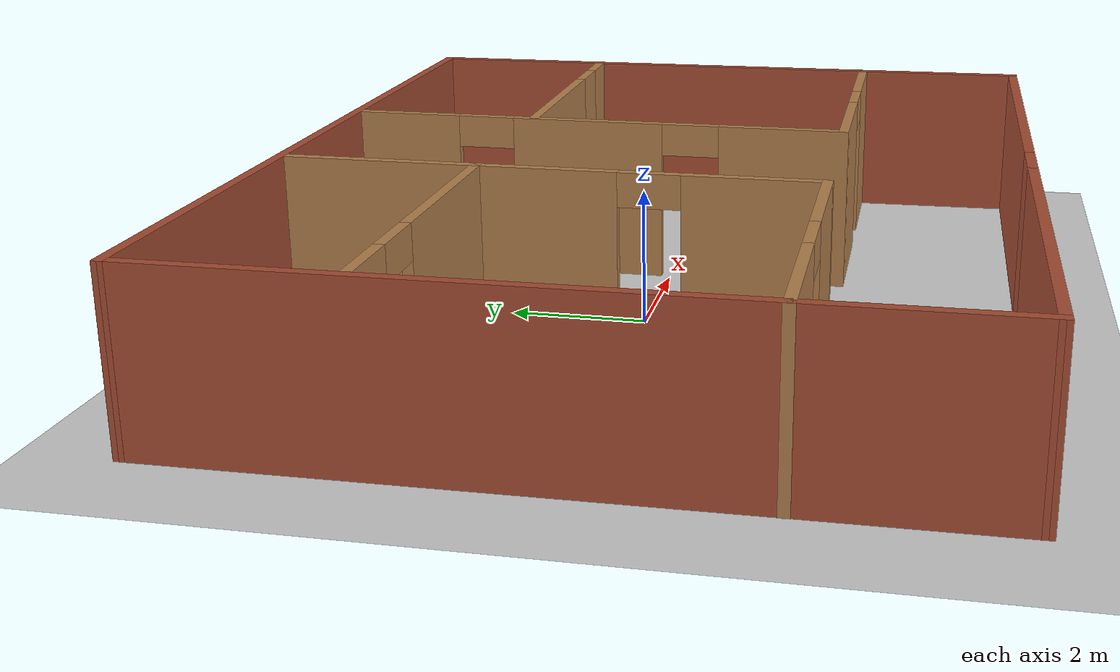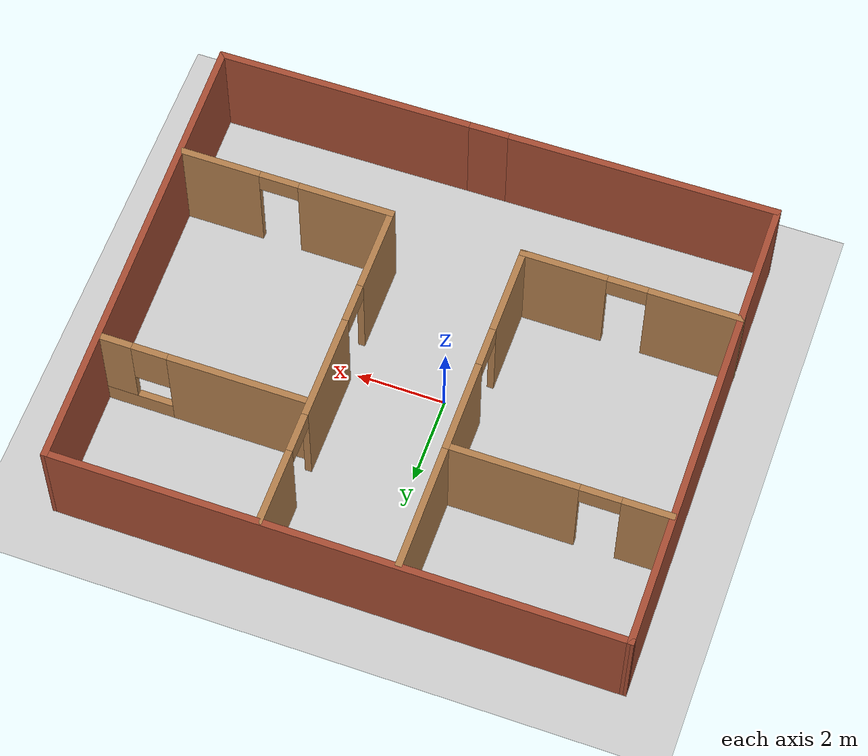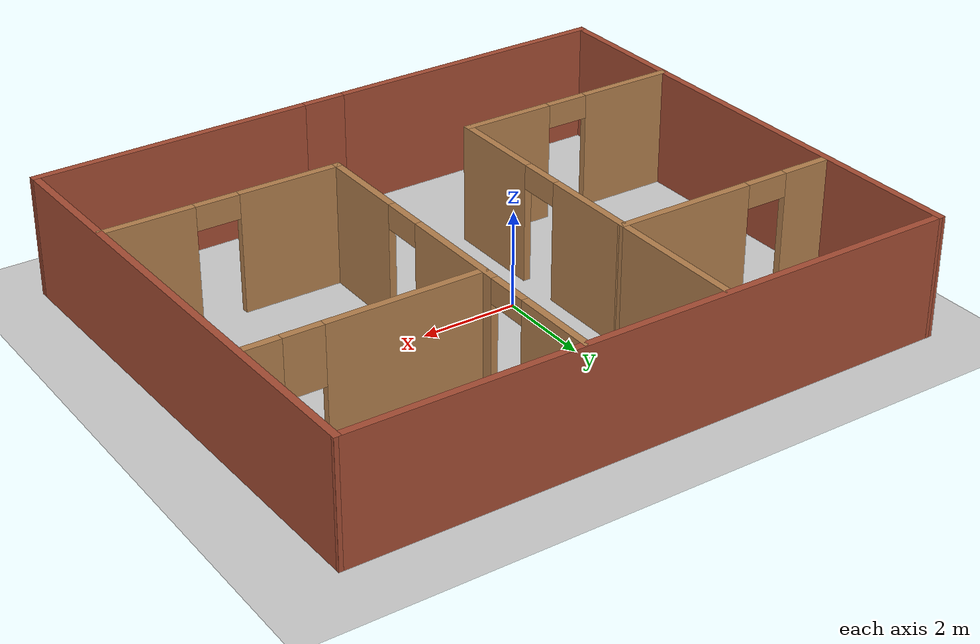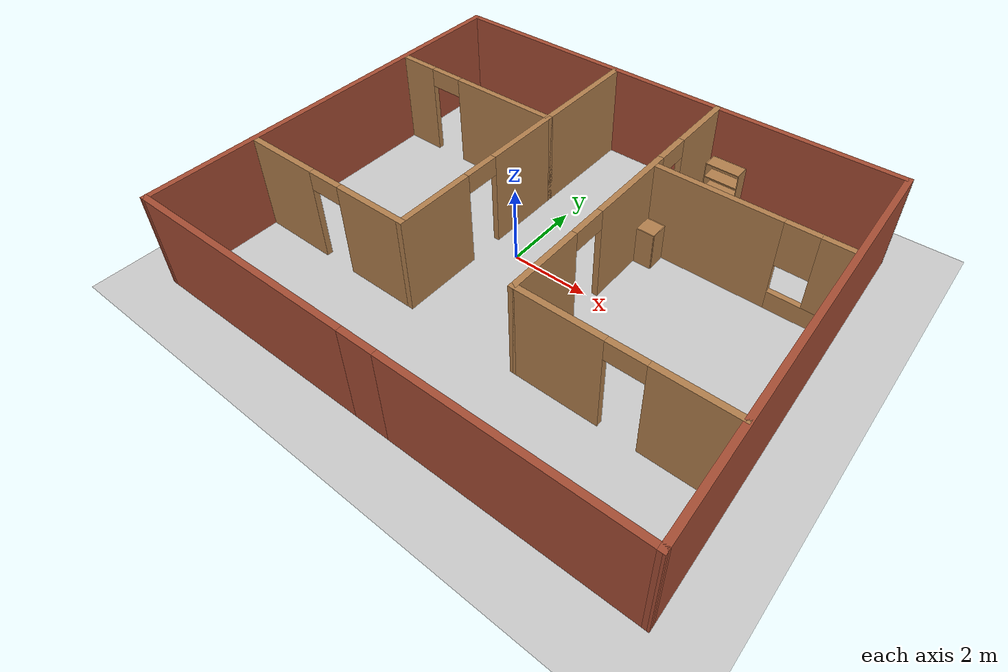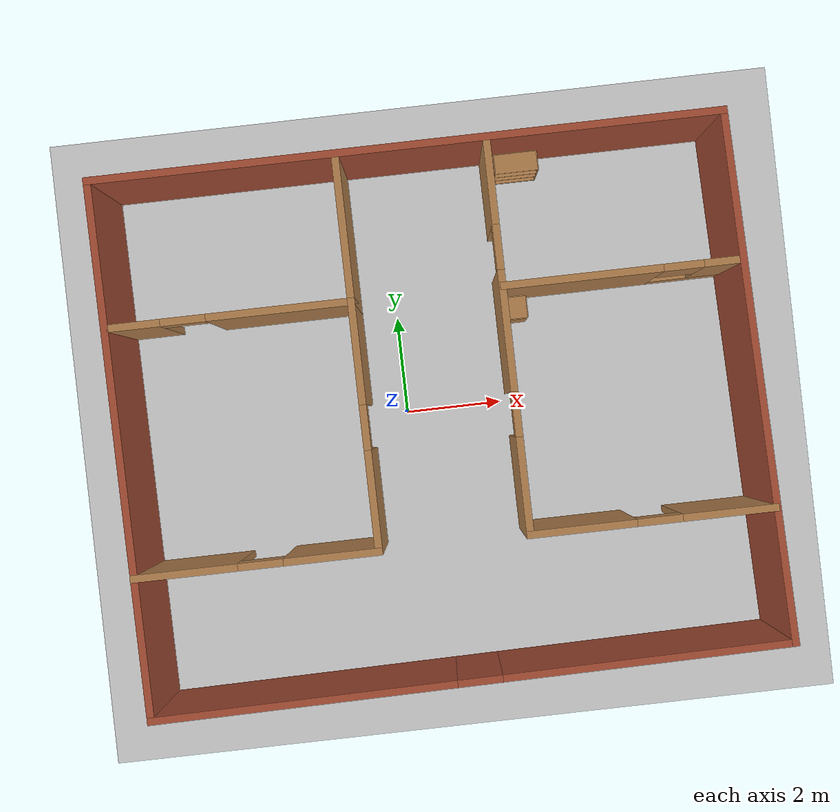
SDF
<sdf version="1.7">
 <world name="default">
  <plugin name="gazebo_ros_state" filename="libgazebo_ros_state.so">
   <ros><namespace>/gazebo</namespace></ros>
   <update_rate>10.0</update_rate>
  </plugin>
  <light name="sun" type="directional">
   <pose>0 0 10 0 -0 0</pose>
   <diffuse>0.8 0.8 0.8 1</diffuse>
   <specular>0.2 0.2 0.2 1</specular>
   <attenuation>
    <range>1000</range>
    <constant>0.9</constant>
    <linear>0.01</linear>
    <quadratic>0.001</quadratic>
   </attenuation>
   <direction>-0.5 0.1 -0.9</direction>
   <spot><inner_angle>0</inner_angle><outer_angle>0</outer_angle><falloff>0</falloff></spot>
  </light>
  <model name="ground_plane">
   <static>1</static>
   <link name="link">
    <collision name="collision">
     <geometry><plane><normal>0 0 1</normal><size>100 100</size></plane></geometry>
     <surface>
      <contact><collide_bitmask>65535</collide_bitmask></contact>
      <friction><ode><mu>100</mu><mu2>50</mu2></ode></friction>
     </surface>
    </collision>
    <visual name="visual">
     <cast_shadows>0</cast_shadows>
     <geometry><plane><normal>0 0 1</normal><size>100 100</size></plane></geometry>
     <material>
      <script><uri>file://media/materials/scripts/gazebo.material</uri><name>Gazebo/Grey</name></script>
     </material>
    </visual>
   </link>
  </model>
  <gravity>0 0 -9.8</gravity>
  <magnetic_field>6e-06 2.3e-05 -4.2e-05</magnetic_field>
  <atmosphere type="adiabatic"/>
  <physics type="ode">
   <max_step_size>0.001</max_step_size>
   <real_time_factor>1</real_time_factor>
   <real_time_update_rate>1000</real_time_update_rate>
  </physics>
  <scene><ambient>0.4 0.4 0.4 1</ambient><background>0.7 0.7 0.7 1</background><shadows>1</shadows></scene>
  <audio><device>default</device></audio>
  <spherical_coordinates>
   <surface_model>EARTH_WGS84</surface_model>
   <latitude_deg>0</latitude_deg>
   <longitude_deg>0</longitude_deg>
   <elevation>0</elevation>
   <heading_deg>0</heading_deg>
  </spherical_coordinates>
  <model name="my_floor">
   <pose>0.713141 -0.16416 0 0 -0 0</pose>
   <link name="Wall_0">
    <collision name="Wall_0_Collision">
     <geometry><box><size>12.75 0.15 2.5</size></box></geometry>
     <pose>0 0 1.25 0 -0 0</pose>
    </collision>
    <visual name="Wall_0_Visual">
     <pose>0 0 1.25 0 -0 0</pose>
     <geometry><box><size>12.75 0.15 2.5</size></box></geometry>
     <material>
      <script><uri>file://media/materials/scripts/gazebo.material</uri><name>Gazebo/Bricks</name></script>
      <ambient>1 1 1 1</ambient>
     </material>
     <meta><layer>0</layer></meta>
    </visual>
    <pose>-0.124542 5.34599 0 0 -0 0</pose>
   </link>
   <link name="Wall_10">
    <pose>3.90072 -2.53061 0 0 -0 0</pose>
    <visual name="Wall_10_Visual_0">
     <pose>-1.40239 0 1.25 0 -0 0</pose>
     <geometry><box><size>2.19523 0.15 2.5</size></box></geometry>
     <material>
      <script><uri>file://media/materials/scripts/gazebo.material</uri><name>Gazebo/Wood</name></script>
      <ambient>1 1 1 1</ambient>
     </material>
     <meta><layer>0</layer></meta>
    </visual>
    <collision name="Wall_10_Collision_0">
     <geometry><box><size>2.19523 0.15 2.5</size></box></geometry>
     <pose>-1.40239 0 1.25 0 -0 0</pose>
    </collision>
    <visual name="Wall_10_Visual_1">
     <pose>1.54761 0 1.25 0 -0 0</pose>
     <geometry><box><size>1.90478 0.15 2.5</size></box></geometry>
     <material>
      <script><uri>file://media/materials/scripts/gazebo.material</uri><name>Gazebo/Wood</name></script>
      <ambient>1 1 1 1</ambient>
     </material>
     <meta><layer>0</layer></meta>
    </visual>
    <collision name="Wall_10_Collision_1">
     <geometry><box><size>1.90478 0.15 2.5</size></box></geometry>
     <pose>1.54761 0 1.25 0 -0 0</pose>
    </collision>
    <visual name="Wall_10_Visual_2">
     <pose>0.145225 0 2.25 0 -0 0</pose>
     <geometry><box><size>0.9 0.15 0.5</size></box></geometry>
     <material>
      <script><uri>file://media/materials/scripts/gazebo.material</uri><name>Gazebo/Wood</name></script>
      <ambient>1 1 1 1</ambient>
     </material>
     <meta><layer>0</layer></meta>
    </visual>
    <collision name="Wall_10_Collision_2">
     <geometry><box><size>0.9 0.15 0.5</size></box></geometry>
     <pose>0.145225 0 2.25 0 -0 0</pose>
    </collision>
   </link>
   <link name="Wall_12">
    <pose>3.80232 2.39337 0 0 -0 0</pose>
    <visual name="Wall_12_Visual_0">
     <pose>-0.756814 0 1.25 0 -0 0</pose>
     <geometry><box><size>3.23637 0.15 2.5</size></box></geometry>
     <material>
      <script><uri>file://media/materials/scripts/gazebo.material</uri><name>Gazebo/Wood</name></script>
      <ambient>1 1 1 1</ambient>
     </material>
     <meta><layer>0</layer></meta>
    </visual>
    <collision name="Wall_12_Collision_0">
     <geometry><box><size>3.23637 0.15 2.5</size></box></geometry>
     <pose>-0.756814 0 1.25 0 -0 0</pose>
    </collision>
    <visual name="Wall_12_Visual_1">
     <pose>1.61819 0 0.25 0 -0 0</pose>
     <geometry><box><size>1.51363 0.15 0.5</size></box></geometry>
     <material>
      <script><uri>file://media/materials/scripts/gazebo.material</uri><name>Gazebo/Wood</name></script>
      <ambient>1 1 1 1</ambient>
     </material>
     <meta><layer>0</layer></meta>
    </visual>
    <collision name="Wall_12_Collision_1">
     <geometry><box><size>1.51363 0.15 0.5</size></box></geometry>
     <pose>1.61819 0 0.25 0 -0 0</pose>
    </collision>
    <visual name="Wall_12_Visual_2">
     <pose>2.01819 0 1.5 0 -0 0</pose>
     <geometry><box><size>0.713628 0.15 2</size></box></geometry>
     <material>
      <script><uri>file://media/materials/scripts/gazebo.material</uri><name>Gazebo/Wood</name></script>
      <ambient>1 1 1 1</ambient>
     </material>
     <meta><layer>0</layer></meta>
    </visual>
    <collision name="Wall_12_Collision_2">
     <geometry><box><size>0.713628 0.15 2</size></box></geometry>
     <pose>2.01819 0 1.5 0 -0 0</pose>
    </collision>
    <visual name="Wall_12_Visual_3">
     <pose>1.26137 0 1.9 0 -0 0</pose>
     <geometry><box><size>0.8 0.15 1.2</size></box></geometry>
     <material>
      <script><uri>file://media/materials/scripts/gazebo.material</uri><name>Gazebo/Wood</name></script>
      <ambient>1 1 1 1</ambient>
     </material>
     <meta><layer>0</layer></meta>
    </visual>
    <collision name="Wall_12_Collision_3">
     <geometry><box><size>0.8 0.15 1.2</size></box></geometry>
     <pose>1.26137 0 1.9 0 -0 0</pose>
    </collision>
   </link>
   <link name="Wall_14">
    <pose>-3.94634 -2.52766 0 0 -0 0</pose>
    <visual name="Wall_14_Visual_0">
     <pose>-1.43419 0 1.25 0 -0 0</pose>
     <geometry><box><size>2.13162 0.15 2.5</size></box></geometry>
     <material>
      <script><uri>file://media/materials/scripts/gazebo.material</uri><name>Gazebo/Wood</name></script>
      <ambient>1 1 1 1</ambient>
     </material>
     <meta><layer>0</layer></meta>
    </visual>
    <collision name="Wall_14_Collision_0">
     <geometry><box><size>2.13162 0.15 2.5</size></box></geometry>
     <pose>-1.43419 0 1.25 0 -0 0</pose>
    </collision>
    <visual name="Wall_14_Visual_1">
     <pose>1.51581 0 1.25 0 -0 0</pose>
     <geometry><box><size>1.96839 0.15 2.5</size></box></geometry>
     <material>
      <script><uri>file://media/materials/scripts/gazebo.material</uri><name>Gazebo/Wood</name></script>
      <ambient>1 1 1 1</ambient>
     </material>
     <meta><layer>0</layer></meta>
    </visual>
    <collision name="Wall_14_Collision_1">
     <geometry><box><size>1.96839 0.15 2.5</size></box></geometry>
     <pose>1.51581 0 1.25 0 -0 0</pose>
    </collision>
    <visual name="Wall_14_Visual_2">
     <pose>0.081615 0 2.25 0 -0 0</pose>
     <geometry><box><size>0.9 0.15 0.5</size></box></geometry>
     <material>
      <script><uri>file://media/materials/scripts/gazebo.material</uri><name>Gazebo/Wood</name></script>
      <ambient>1 1 1 1</ambient>
     </material>
     <meta><layer>0</layer></meta>
    </visual>
    <collision name="Wall_14_Collision_2">
     <geometry><box><size>0.9 0.15 0.5</size></box></geometry>
     <pose>0.081615 0 2.25 0 -0 0</pose>
    </collision>
   </link>
   <link name="Wall_15">
    <pose>-1.52134 -0.053846 0 0 -0 1.5708</pose>
    <visual name="Wall_15_Visual_0">
     <pose>-1.50907 0 1.25 0 -0 0</pose>
     <geometry><box><size>2.07949 0.15 2.5</size></box></geometry>
     <material>
      <script><uri>file://media/materials/scripts/gazebo.material</uri><name>Gazebo/Wood</name></script>
      <ambient>1 1 1 1</ambient>
     </material>
     <meta><layer>0</layer></meta>
    </visual>
    <collision name="Wall_15_Collision_0">
     <geometry><box><size>2.07949 0.15 2.5</size></box></geometry>
     <pose>-1.50907 0 1.25 0 -0 0</pose>
    </collision>
    <visual name="Wall_15_Visual_1">
     <pose>1.48975 0 1.25 0 -0 0</pose>
     <geometry><box><size>2.11815 0.15 2.5</size></box></geometry>
     <material>
      <script><uri>file://media/materials/scripts/gazebo.material</uri><name>Gazebo/Wood</name></script>
      <ambient>1 1 1 1</ambient>
     </material>
     <meta><layer>0</layer></meta>
    </visual>
    <collision name="Wall_15_Collision_1">
     <geometry><box><size>2.11815 0.15 2.5</size></box></geometry>
     <pose>1.48975 0 1.25 0 -0 0</pose>
    </collision>
    <visual name="Wall_15_Visual_2">
     <pose>-0.019328 0 2.25 0 -0 0</pose>
     <geometry><box><size>0.9 0.15 0.5</size></box></geometry>
     <material>
      <script><uri>file://media/materials/scripts/gazebo.material</uri><name>Gazebo/Wood</name></script>
      <ambient>1 1 1 1</ambient>
     </material>
     <meta><layer>0</layer></meta>
    </visual>
    <collision name="Wall_15_Collision_2">
     <geometry><box><size>0.9 0.15 0.5</size></box></geometry>
     <pose>-0.019328 0 2.25 0 -0 0</pose>
    </collision>
   </link>
   <link name="Wall_2">
    <collision name="Wall_2_Collision">
     <geometry><box><size>10.7138 0.15 2.5</size></box></geometry>
     <pose>0 0 1.25 0 -0 0</pose>
    </collision>
    <visual name="Wall_2_Visual">
     <pose>0 0 1.25 0 -0 0</pose>
     <geometry><box><size>10.7138 0.15 2.5</size></box></geometry>
     <material>
      <script><uri>file://media/materials/scripts/gazebo.material</uri><name>Gazebo/Bricks</name></script>
      <ambient>1 1 1 1</ambient>
     </material>
     <meta><layer>0</layer></meta>
    </visual>
    <pose>6.29941 0.065855 0 0 -0 -1.54733</pose>
   </link>
   <link name="Wall_3">
    <pose>0.039306 -5.28078 0 0 -0 -3.13118</pose>
    <visual name="Wall_3_Visual_0">
     <pose>-3.52578 0 1.25 0 -0 0</pose>
     <geometry><box><size>5.86723 0.15 2.5</size></box></geometry>
     <material>
      <script><uri>file://media/materials/scripts/gazebo.material</uri><name>Gazebo/Bricks</name></script>
      <ambient>1 1 1 1</ambient>
     </material>
     <meta><layer>0</layer></meta>
    </visual>
    <collision name="Wall_3_Collision_0">
     <geometry><box><size>5.86723 0.15 2.5</size></box></geometry>
     <pose>-3.52578 0 1.25 0 -0 0</pose>
    </collision>
    <visual name="Wall_3_Visual_1">
     <pose>3.38361 0 1.25 0 -0 0</pose>
     <geometry><box><size>6.15156 0.15 2.5</size></box></geometry>
     <material>
      <script><uri>file://media/materials/scripts/gazebo.material</uri><name>Gazebo/Bricks</name></script>
      <ambient>1 1 1 1</ambient>
     </material>
     <meta><layer>0</layer></meta>
    </visual>
    <collision name="Wall_3_Collision_1">
     <geometry><box><size>6.15156 0.15 2.5</size></box></geometry>
     <pose>3.38361 0 1.25 0 -0 0</pose>
    </collision>
    <visual name="Wall_3_Visual_2">
     <pose>-0.142163 0 1.25 0 -0 0</pose>
     <geometry><box><size>0.9 0.15 2.5</size></box></geometry>
     <material>
      <script><uri>file://media/materials/scripts/gazebo.material</uri><name>Gazebo/Bricks</name></script>
      <ambient>1 1 1 1</ambient>
     </material>
     <meta><layer>0</layer></meta>
    </visual>
    <collision name="Wall_3_Collision_2">
     <geometry><box><size>0.9 0.15 2.5</size></box></geometry>
     <pose>-0.142163 0 1.25 0 -0 0</pose>
    </collision>
   </link>
   <link name="Wall_4">
    <collision name="Wall_4_Collision">
     <geometry><box><size>10.8436 0.15 2.5</size></box></geometry>
     <pose>0 0 1.25 0 -0 0</pose>
    </collision>
    <visual name="Wall_4_Visual">
     <pose>0 0 1.25 0 -0 0</pose>
     <geometry><box><size>10.8436 0.15 2.5</size></box></geometry>
     <material>
      <script><uri>file://media/materials/scripts/gazebo.material</uri><name>Gazebo/Bricks</name></script>
      <ambient>1 1 1 1</ambient>
     </material>
     <meta><layer>0</layer></meta>
    </visual>
    <pose>-6.38464 -0.000645 0 0 -0 1.57826</pose>
   </link>
   <link name="Wall_6">
    <pose>-3.94634 2.41997 0 0 -0 0</pose>
    <visual name="Wall_6_Visual_0">
     <pose>-1.92939 0 1.25 0 -0 0</pose>
     <geometry><box><size>1.14121 0.15 2.5</size></box></geometry>
     <material>
      <script><uri>file://media/materials/scripts/gazebo.material</uri><name>Gazebo/Wood</name></script>
      <ambient>1 1 1 1</ambient>
     </material>
     <meta><layer>0</layer></meta>
    </visual>
    <collision name="Wall_6_Collision_0">
     <geometry><box><size>1.14121 0.15 2.5</size></box></geometry>
     <pose>-1.92939 0 1.25 0 -0 0</pose>
    </collision>
    <visual name="Wall_6_Visual_1">
     <pose>1.02061 0 1.25 0 -0 0</pose>
     <geometry><box><size>2.95879 0.15 2.5</size></box></geometry>
     <material>
      <script><uri>file://media/materials/scripts/gazebo.material</uri><name>Gazebo/Wood</name></script>
      <ambient>1 1 1 1</ambient>
     </material>
     <meta><layer>0</layer></meta>
    </visual>
    <collision name="Wall_6_Collision_1">
     <geometry><box><size>2.95879 0.15 2.5</size></box></geometry>
     <pose>1.02061 0 1.25 0 -0 0</pose>
    </collision>
    <visual name="Wall_6_Visual_2">
     <pose>-0.908789 0 2.25 0 -0 0</pose>
     <geometry><box><size>0.9 0.15 0.5</size></box></geometry>
     <material>
      <script><uri>file://media/materials/scripts/gazebo.material</uri><name>Gazebo/Wood</name></script>
      <ambient>1 1 1 1</ambient>
     </material>
     <meta><layer>0</layer></meta>
    </visual>
    <collision name="Wall_6_Collision_2">
     <geometry><box><size>0.9 0.15 0.5</size></box></geometry>
     <pose>-0.908789 0 2.25 0 -0 0</pose>
    </collision>
   </link>
   <link name="Wall_7">
    <collision name="Wall_7_Collision">
     <geometry><box><size>3 0.15 2.5</size></box></geometry>
     <pose>0 0 1.25 0 -0 0</pose>
    </collision>
    <visual name="Wall_7_Visual">
     <pose>0 0 1.25 0 -0 0</pose>
     <geometry><box><size>3 0.15 2.5</size></box></geometry>
     <material>
      <script><uri>file://media/materials/scripts/gazebo.material</uri><name>Gazebo/Wood</name></script>
      <ambient>1 1 1 1</ambient>
     </material>
     <meta><layer>0</layer></meta>
    </visual>
    <pose>-1.52134 3.84497 0 0 -0 1.5708</pose>
   </link>
   <link name="Wall_9">
    <pose>1.47572 1.39439 0 0 -0 -1.5708</pose>
    <visual name="Wall_9_Visual_0">
     <pose>-3.11036 0 1.25 0 -0 0</pose>
     <geometry><box><size>1.77928 0.15 2.5</size></box></geometry>
     <material>
      <script><uri>file://media/materials/scripts/gazebo.material</uri><name>Gazebo/Wood</name></script>
      <ambient>1 1 1 1</ambient>
     </material>
     <meta><layer>0</layer></meta>
    </visual>
    <collision name="Wall_9_Collision_0">
     <geometry><box><size>1.77928 0.15 2.5</size></box></geometry>
     <pose>-3.11036 0 1.25 0 -0 0</pose>
    </collision>
    <visual name="Wall_9_Visual_1">
     <pose>-0.116879 0 1.25 0 -0 0</pose>
     <geometry><box><size>2.40768 0.15 2.5</size></box></geometry>
     <material>
      <script><uri>file://media/materials/scripts/gazebo.material</uri><name>Gazebo/Wood</name></script>
      <ambient>1 1 1 1</ambient>
     </material>
     <meta><layer>0</layer></meta>
    </visual>
    <collision name="Wall_9_Collision_1">
     <geometry><box><size>2.40768 0.15 2.5</size></box></geometry>
     <pose>-0.116879 0 1.25 0 -0 0</pose>
    </collision>
    <visual name="Wall_9_Visual_2">
     <pose>2.99348 0 1.25 0 -0 0</pose>
     <geometry><box><size>2.01304 0.15 2.5</size></box></geometry>
     <material>
      <script><uri>file://media/materials/scripts/gazebo.material</uri><name>Gazebo/Wood</name></script>
      <ambient>1 1 1 1</ambient>
     </material>
     <meta><layer>0</layer></meta>
    </visual>
    <collision name="Wall_9_Collision_2">
     <geometry><box><size>2.01304 0.15 2.5</size></box></geometry>
     <pose>2.99348 0 1.25 0 -0 0</pose>
    </collision>
    <visual name="Wall_9_Visual_3">
     <pose>-1.77072 0 2.25 0 -0 0</pose>
     <geometry><box><size>0.9 0.15 0.5</size></box></geometry>
     <material>
      <script><uri>file://media/materials/scripts/gazebo.material</uri><name>Gazebo/Wood</name></script>
      <ambient>1 1 1 1</ambient>
     </material>
     <meta><layer>0</layer></meta>
    </visual>
    <collision name="Wall_9_Collision_3">
     <geometry><box><size>0.9 0.15 0.5</size></box></geometry>
     <pose>-1.77072 0 2.25 0 -0 0</pose>
    </collision>
    <visual name="Wall_9_Visual_4">
     <pose>1.53696 0 2.25 0 -0 0</pose>
     <geometry><box><size>0.9 0.15 0.5</size></box></geometry>
     <material>
      <script><uri>file://media/materials/scripts/gazebo.material</uri><name>Gazebo/Wood</name></script>
      <ambient>1 1 1 1</ambient>
     </material>
     <meta><layer>0</layer></meta>
    </visual>
    <collision name="Wall_9_Collision_4">
     <geometry><box><size>0.9 0.15 0.5</size></box></geometry>
     <pose>1.53696 0 2.25 0 -0 0</pose>
    </collision>
   </link>
   <static>1</static>
  </model>
  <model name="bookshelf">
   <static>1</static>
   <link name="link">
    <inertial><mass>1</mass></inertial>
    <collision name="back">
     <pose>0 0.005 0.6 0 -0 0</pose>
     <geometry><box><size>0.9 0.01 1.2</size></box></geometry>
    </collision>
    <visual name="visual1">
     <pose>0 0.005 0.6 0 -0 0</pose>
     <geometry><box><size>0.9 0.01 1.2</size></box></geometry>
     <material>
      <script><uri>file://media/materials/scripts/gazebo.material</uri><name>Gazebo/Wood</name></script>
     </material>
    </visual>
    <collision name="left_side">
     <pose>0.45 -0.195 0.6 0 -0 0</pose>
     <geometry><box><size>0.02 0.4 1.2</size></box></geometry>
    </collision>
    <visual name="visual2">
     <pose>0.45 -0.195 0.6 0 -0 0</pose>
     <geometry><box><size>0.02 0.4 1.2</size></box></geometry>
     <material>
      <script><uri>file://media/materials/scripts/gazebo.material</uri><name>Gazebo/Wood</name></script>
     </material>
    </visual>
    <collision name="right_side">
     <pose>-0.45 -0.195 0.6 0 -0 0</pose>
     <geometry><box><size>0.02 0.4 1.2</size></box></geometry>
    </collision>
    <visual name="visual3">
     <pose>-0.45 -0.195 0.6 0 -0 0</pose>
     <geometry><box><size>0.02 0.4 1.2</size></box></geometry>
     <material>
      <script><uri>file://media/materials/scripts/gazebo.material</uri><name>Gazebo/Wood</name></script>
     </material>
    </visual>
    <collision name="bottom">
     <pose>0 -0.195 0.03 0 -0 0</pose>
     <geometry><box><size>0.88 0.4 0.06</size></box></geometry>
    </collision>
    <visual name="visual4">
     <pose>0 -0.195 0.03 0 -0 0</pose>
     <geometry><box><size>0.88 0.4 0.06</size></box></geometry>
     <material>
      <script><uri>file://media/materials/scripts/gazebo.material</uri><name>Gazebo/Wood</name></script>
     </material>
    </visual>
    <collision name="top">
     <pose>0 -0.195 1.19 0 -0 0</pose>
     <geometry><box><size>0.88 0.4 0.02</size></box></geometry>
    </collision>
    <visual name="visual5">
     <pose>0 -0.195 1.19 0 -0 0</pose>
     <geometry><box><size>0.88 0.4 0.02</size></box></geometry>
     <material>
      <script><uri>file://media/materials/scripts/gazebo.material</uri><name>Gazebo/Wood</name></script>
     </material>
    </visual>
    <collision name="low_shelf">
     <pose>0 -0.195 0.43 0 -0 0</pose>
     <geometry><box><size>0.88 0.4 0.02</size></box></geometry>
    </collision>
    <visual name="visual6">
     <pose>0 -0.195 0.43 0 -0 0</pose>
     <geometry><box><size>0.88 0.4 0.02</size></box></geometry>
     <material>
      <script><uri>file://media/materials/scripts/gazebo.material</uri><name>Gazebo/Wood</name></script>
     </material>
    </visual>
    <collision name="high_shelf">
     <pose>0 -0.195 0.8 0 -0 0</pose>
     <geometry><box><size>0.88 0.4 0.02</size></box></geometry>
    </collision>
    <visual name="visual7">
     <pose>0 -0.195 0.8 0 -0 0</pose>
     <geometry><box><size>0.88 0.4 0.02</size></box></geometry>
     <material>
      <script><uri>file://media/materials/scripts/gazebo.material</uri><name>Gazebo/Wood</name></script>
     </material>
    </visual>
   </link>
   <pose>2.81488 5.05154 0 0 -0 0</pose>
  </model>
  <model name="cabinet">
   <static>1</static>
   <link name="cabinet_bottom_plate">
    <inertial>
     <pose>0 0 -1 0 -0 0</pose>
     <inertia><ixx>2.05</ixx><ixy>0</ixy><ixz>0</ixz><iyy>2.05</iyy><iyz>0</iyz><izz>2.05</izz></inertia>
     <mass>25</mass>
    </inertial>
    <collision name="cabinet_bottom_plate_geom">
     <pose>0 0 0.01 0 -0 0</pose>
     <geometry><box><size>0.45 0.45 0.02</size></box></geometry>
    </collision>
    <visual name="cabinet_bottom_plate_geom_visual">
     <pose>0 0 0.01 0 -0 0</pose>
     <geometry><box><size>0.45 0.45 0.02</size></box></geometry>
     <material>
      <script><uri>file://media/materials/scripts/gazebo.material</uri><name>Gazebo/Wood</name></script>
     </material>
    </visual>
    <collision name="cabinet_bottom_plate_geom_cabinet_back_plate">
     <pose>0.235 0 0.51 0 -0 0</pose>
     <geometry><box><size>0.02 0.45 1.02</size></box></geometry>
    </collision>
    <visual name="cabinet_bottom_plate_geom_cabinet_back_plate_visual">
     <pose>0.235 0 0.51 0 -0 0</pose>
     <geometry><box><size>0.02 0.45 1.02</size></box></geometry>
     <material>
      <script><uri>file://media/materials/scripts/gazebo.material</uri><name>Gazebo/Wood</name></script>
     </material>
    </visual>
    <collision name="cabinet_bottom_plate_geom_cabinet_left_plate">
     <pose>0 0.235 0.51 0 -0 0</pose>
     <geometry><box><size>0.45 0.02 1.02</size></box></geometry>
    </collision>
    <visual name="cabinet_bottom_plate_geom_cabinet_left_plate_visual">
     <pose>0 0.235 0.51 0 -0 0</pose>
     <geometry><box><size>0.45 0.02 1.02</size></box></geometry>
     <material>
      <script><uri>file://media/materials/scripts/gazebo.material</uri><name>Gazebo/Wood</name></script>
     </material>
    </visual>
    <collision name="cabinet_bottom_plate_geom_cabinet_middle_plate">
     <pose>0 0 0.51 0 -0 0</pose>
     <geometry><box><size>0.45 0.45 0.02</size></box></geometry>
    </collision>
    <visual name="cabinet_bottom_plate_geom_cabinet_middle_plate_visual">
     <pose>0 0 0.51 0 -0 0</pose>
     <geometry><box><size>0.45 0.45 0.02</size></box></geometry>
     <material>
      <script><uri>file://media/materials/scripts/gazebo.material</uri><name>Gazebo/Wood</name></script>
     </material>
    </visual>
    <collision name="cabinet_bottom_plate_geom_cabinet_right_plate">
     <pose>0 -0.235 0.51 0 -0 0</pose>
     <geometry><box><size>0.45 0.02 1.02</size></box></geometry>
    </collision>
    <visual name="cabinet_bottom_plate_geom_cabinet_right_plate_visual">
     <pose>0 -0.235 0.51 0 -0 0</pose>
     <geometry><box><size>0.45 0.02 1.02</size></box></geometry>
     <material>
      <script><uri>file://media/materials/scripts/gazebo.material</uri><name>Gazebo/Wood</name></script>
     </material>
    </visual>
    <collision name="cabinet_bottom_plate_geom_cabinet_top_plate">
     <pose>0 0 1.01 0 -0 0</pose>
     <geometry><box><size>0.45 0.45 0.02</size></box></geometry>
    </collision>
    <visual name="cabinet_bottom_plate_geom_cabinet_top_plate_visual">
     <pose>0 0 1.01 0 -0 0</pose>
     <geometry><box><size>0.45 0.45 0.02</size></box></geometry>
     <material>
      <script><uri>file://media/materials/scripts/gazebo.material</uri><name>Gazebo/Wood</name></script>
     </material>
    </visual>
   </link>
   <pose>2.49455 1.88796 0 0 -0 0</pose>
  </model>
 </world>
</sdf>
